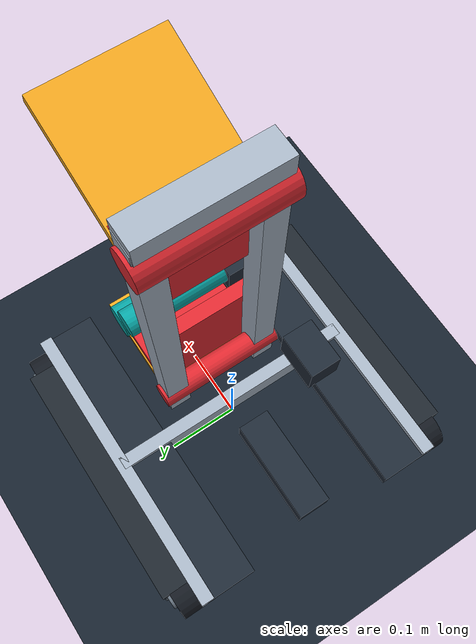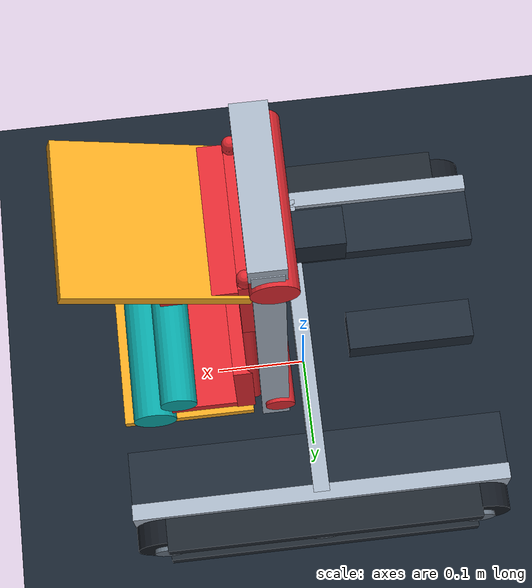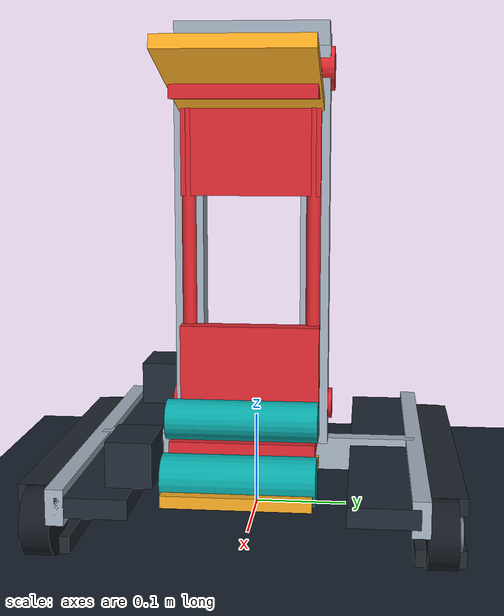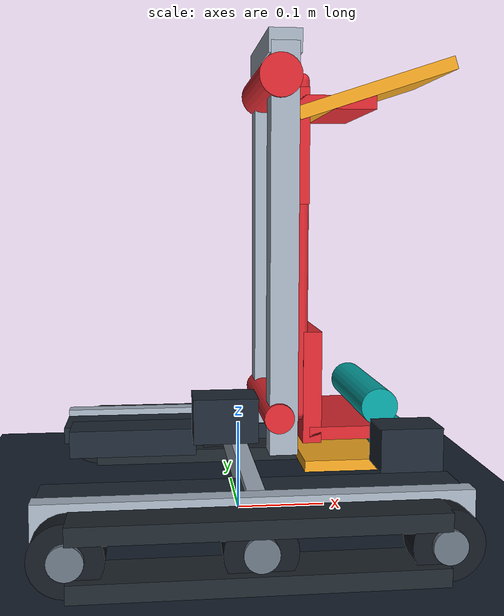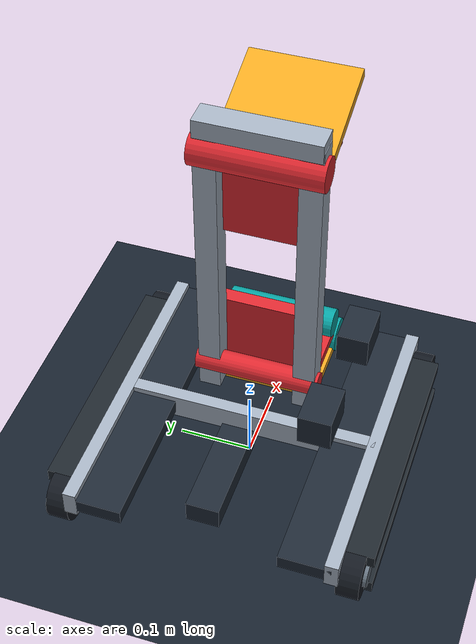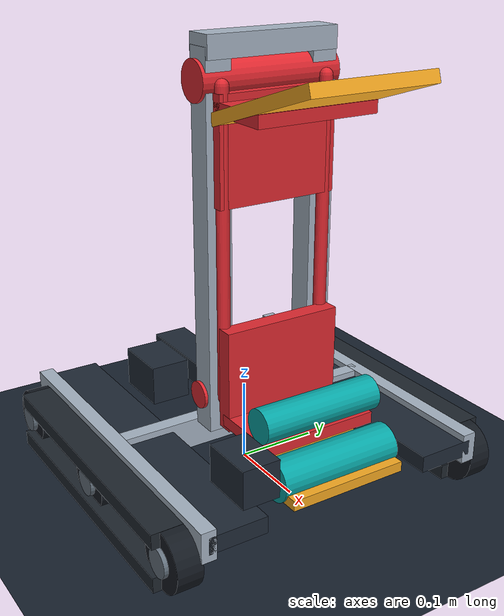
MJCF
<mujoco model="Pocket Chain High-Side Loader"><compiler angle="degree" /><visual><global offwidth="800" offheight="600" /><quality offsamples="0" /><headlight ambient=".45 .45 .45" /></visual><worldbody><light pos="0 -1 3" castshadow="false" /><geom type="plane" size="2 2 .1" rgba=".09 .13 .18 1" /><geom type="box" pos="0 -0.175 0.059925" size="0.21 0.009 0.018" euler="0 0 0" rgba=".65 .7 .76 1" contype="0" conaffinity="0" /><geom type="box" pos="0 0.175 0.059925" size="0.21 0.009 0.018" euler="0 0 0" rgba=".65 .7 .76 1" contype="0" conaffinity="0" /><geom type="box" pos="0 0 0.059925" size="0.009 0.175 0.018" euler="0 0 0" rgba=".65 .7 .76 1" contype="0" conaffinity="0" /><geom type="box" pos="0 -0.13999999999999999 0.059925" size="0.21 0.035 0.01" euler="0 0 0" rgba=".12 .16 .21 1" contype="0" conaffinity="0" /><geom type="box" pos="0 0.13999999999999999 0.059925" size="0.21 0.035 0.01" euler="0 0 0" rgba=".12 .16 .21 1" contype="0" conaffinity="0" /><geom type="cylinder" pos="-0.175 -0.19599999999999998 0.034925" size="0.034925 0.015" euler="90 0 0" rgba=".08 .1 .13 1" contype="0" conaffinity="0" /><geom type="cylinder" pos="-0.175 -0.213 0.034925" size="0.016763999999999998 0.003" euler="90 0 0" rgba=".4 .45 .5 1" contype="0" conaffinity="0" /><geom type="cylinder" pos="0.0 -0.19599999999999998 0.034925" size="0.034925 0.015" euler="90 0 0" rgba=".08 .1 .13 1" contype="0" conaffinity="0" /><geom type="cylinder" pos="0.0 -0.213 0.034925" size="0.016763999999999998 0.003" euler="90 0 0" rgba=".4 .45 .5 1" contype="0" conaffinity="0" /><geom type="cylinder" pos="0.175 -0.19599999999999998 0.034925" size="0.034925 0.015" euler="90 0 0" rgba=".08 .1 .13 1" contype="0" conaffinity="0" /><geom type="cylinder" pos="0.175 -0.213 0.034925" size="0.016763999999999998 0.003" euler="90 0 0" rgba=".4 .45 .5 1" contype="0" conaffinity="0" /><geom type="box" pos="0 -0.19599999999999998 0.00873125" size="0.175 0.025 0.009" euler="0 0 0" rgba=".12 .15 .18 1" contype="0" conaffinity="0" /><geom type="box" pos="0 -0.19599999999999998 0.06111875" size="0.175 0.025 0.009" euler="0 0 0" rgba=".12 .15 .18 1" contype="0" conaffinity="0" /><geom type="cylinder" pos="-0.175 0.19599999999999998 0.034925" size="0.034925 0.015" euler="90 0 0" rgba=".08 .1 .13 1" contype="0" conaffinity="0" /><geom type="cylinder" pos="-0.175 0.213 0.034925" size="0.016763999999999998 0.003" euler="90 0 0" rgba=".4 .45 .5 1" contype="0" conaffinity="0" /><geom type="cylinder" pos="0.0 0.19599999999999998 0.034925" size="0.034925 0.015" euler="90 0 0" rgba=".08 .1 .13 1" contype="0" conaffinity="0" /><geom type="cylinder" pos="0.0 0.213 0.034925" size="0.016763999999999998 0.003" euler="90 0 0" rgba=".4 .45 .5 1" contype="0" conaffinity="0" /><geom type="cylinder" pos="0.175 0.19599999999999998 0.034925" size="0.034925 0.015" euler="90 0 0" rgba=".08 .1 .13 1" contype="0" conaffinity="0" /><geom type="cylinder" pos="0.175 0.213 0.034925" size="0.016763999999999998 0.003" euler="90 0 0" rgba=".4 .45 .5 1" contype="0" conaffinity="0" /><geom type="box" pos="0 0.19599999999999998 0.00873125" size="0.175 0.025 0.009" euler="0 0 0" rgba=".12 .15 .18 1" contype="0" conaffinity="0" /><geom type="box" pos="0 0.19599999999999998 0.06111875" size="0.175 0.025 0.009" euler="0 0 0" rgba=".12 .15 .18 1" contype="0" conaffinity="0" /><geom type="box" pos="-0.12 0.0 0.084925" size="0.07 0.022 0.015" euler="0 0 0" rgba=".12 .16 .21 1" contype="0" conaffinity="0" /><geom type="box" pos="0.04 0.066 0.3" size="0.015 0.015 0.215" euler="0.0 0.0 0.0" rgba=".65 .7 .76 1" contype="0" conaffinity="0" /><geom type="box" pos="0.04 -0.066 0.3" size="0.015 0.015 0.215" euler="0.0 0.0 0.0" rgba=".65 .7 .76 1" contype="0" conaffinity="0" /><geom type="box" pos="0.04 0.0 0.515" size="0.0175 0.08 0.0125" euler="0.0 0.0 0.0" rgba=".65 .7 .76 1" contype="0" conaffinity="0" /><geom type="cylinder" pos="0.035 0.0 0.125" size="0.016 0.085" euler="90.0 0.0 0.0" rgba=".87 .16 .19 1" contype="0" conaffinity="0" /><geom type="cylinder" pos="0.035 0.0 0.48" size="0.0225 0.085" euler="90.0 0.0 0.0" rgba=".87 .16 .19 1" contype="0" conaffinity="0" /><geom type="capsule" pos="0.06 0.065 0.302" size="0.0075 0.175" euler="0.0 0.0 0.0" rgba=".87 .16 .19 1" contype="0" conaffinity="0" /><geom type="capsule" pos="0.06 -0.065 0.302" size="0.0075 0.175" euler="0.0 0.0 0.0" rgba=".87 .16 .19 1" contype="0" conaffinity="0" /><geom type="cylinder" pos="0.175 0.0 0.082" size="0.024 0.075" euler="90.0 0.0 0.0" rgba=".03 .65 .65 1" contype="0" conaffinity="0" /><geom type="cylinder" pos="0.145 0.0 0.133" size="0.02 0.075" euler="90.0 0.0 0.0" rgba=".03 .65 .65 1" contype="0" conaffinity="0" /><geom type="box" pos="0.137 0.0 0.069" size="0.0725 0.0725 0.006" euler="0.0 0.0 0.0" rgba=".96 .66 .13 1" contype="0" conaffinity="0" /><geom type="box" pos="0.072 0.0 0.155" size="0.01 0.0725 0.06" euler="0.0 0.0 0.0" rgba=".87 .16 .19 1" contype="0" conaffinity="0" /><geom type="box" pos="0.112 0.0 0.105" size="0.0425 0.0725 0.007" euler="0.0 0.0 0.0" rgba=".87 .16 .19 1" contype="0" conaffinity="0" /><geom type="box" pos="0.057 0.0 0.41" size="0.01 0.0725 0.06" euler="0.0 0.0 0.0" rgba=".87 .16 .19 1" contype="0" conaffinity="0" /><geom type="box" pos="0.095 0.0 0.455" size="0.0425 0.0725 0.007" euler="0.0 0.0 0.0" rgba=".87 .16 .19 1" contype="0" conaffinity="0" /><geom type="box" pos="0.138 0.0 0.47" size="0.0875 0.075 0.007" euler="0.0 -18.0 0.0" rgba=".96 .66 .13 1" contype="0" conaffinity="0" /><geom type="box" pos="-0.025 -0.105 0.135" size="0.0325 0.0225 0.0225" euler="0.0 0.0 0.0" rgba=".12 .16 .21 1" contype="0" conaffinity="0" /><geom type="box" pos="0.165 -0.105 0.1" size="0.0325 0.0225 0.0225" euler="0.0 0.0 0.0" rgba=".12 .16 .21 1" contype="0" conaffinity="0" /></worldbody></mujoco>
